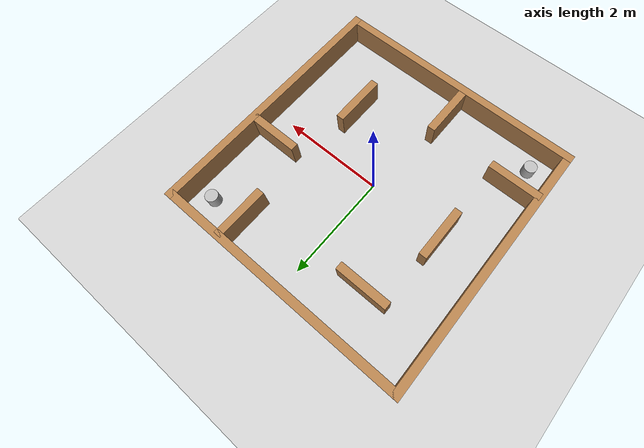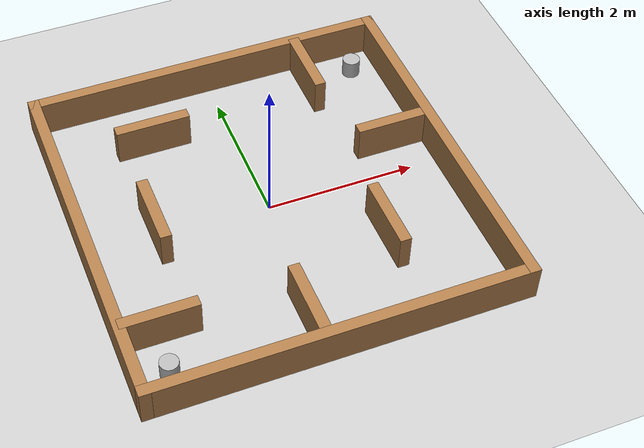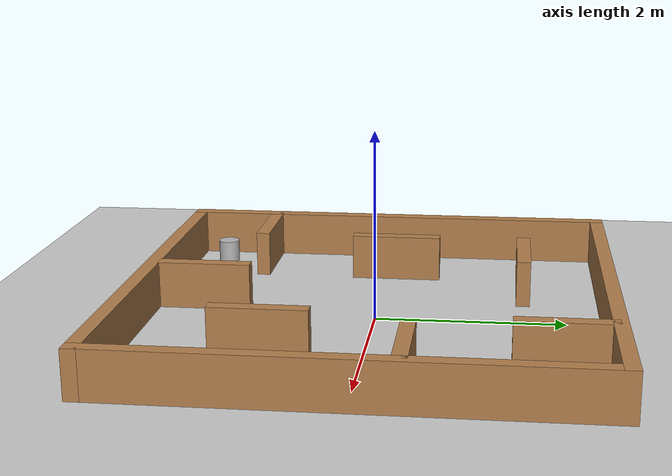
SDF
<sdf version="1.7">
 <world name="default">
  <light name="sun" type="directional">
   <pose>0 0 10 0 -0 0</pose>
   <diffuse>0.8 0.8 0.8 1</diffuse>
   <specular>0.2 0.2 0.2 1</specular>
   <attenuation>
    <range>1000</range>
    <constant>0.9</constant>
    <linear>0.01</linear>
    <quadratic>0.001</quadratic>
   </attenuation>
   <direction>-0.5 0.1 -0.9</direction>
   <spot><inner_angle>0</inner_angle><outer_angle>0</outer_angle><falloff>0</falloff></spot>
  </light>
  <model name="ground_plane">
   <static>1</static>
   <link name="link">
    <collision name="collision">
     <geometry><plane><normal>0 0 1</normal><size>100 100</size></plane></geometry>
     <surface>
      <contact><collide_bitmask>65535</collide_bitmask></contact>
      <friction><ode><mu>100</mu><mu2>50</mu2></ode></friction>
     </surface>
    </collision>
    <visual name="visual">
     <cast_shadows>0</cast_shadows>
     <geometry><plane><normal>0 0 1</normal><size>100 100</size></plane></geometry>
     <material>
      <script><uri>file://media/materials/scripts/gazebo.material</uri><name>Gazebo/Grey</name></script>
     </material>
    </visual>
   </link>
  </model>
  <physics type="ode">
   <real_time_update_rate>1000</real_time_update_rate>
   <max_step_size>0.001</max_step_size>
   <real_time_factor>1</real_time_factor>
   <ode>
    <solver>
     <type>quick</type>
     <iters>150</iters>
     <precon_iters>0</precon_iters>
     <sor>1.4</sor>
     <use_dynamic_moi_rescaling>1</use_dynamic_moi_rescaling>
    </solver>
    <constraints>
     <cfm>1e-05</cfm>
     <erp>0.2</erp>
     <contact_max_correcting_vel>2000</contact_max_correcting_vel>
     <contact_surface_layer>0.01</contact_surface_layer>
    </constraints>
   </ode>
  </physics>
  <model name="obstacle_1">
   <pose>2 2 0.124999 0 -0 0</pose>
   <link name="link">
    <collision name="collision">
     <geometry><cylinder><radius>0.12</radius><length>0.25</length></cylinder></geometry>
    </collision>
    <visual name="visual">
     <geometry><cylinder><radius>0.12</radius><length>0.25</length></cylinder></geometry>
    </visual>
    <inertial>
     <inertia><ixx>1</ixx><ixy>0</ixy><ixz>0</ixz><iyy>1</iyy><iyz>0</iyz><izz>1</izz></inertia>
     <mass>1</mass>
    </inertial>
   </link>
  </model>
  <model name="obstacle_2">
   <pose>-2 -2 0.124999 0 -0 0</pose>
   <link name="link">
    <collision name="collision">
     <geometry><cylinder><radius>0.12</radius><length>0.25</length></cylinder></geometry>
    </collision>
    <visual name="visual">
     <geometry><cylinder><radius>0.12</radius><length>0.25</length></cylinder></geometry>
    </visual>
    <inertial>
     <inertia><ixx>1</ixx><ixy>0</ixy><ixz>0</ixz><iyy>1</iyy><iyz>0</iyz><izz>1</izz></inertia>
     <mass>1</mass>
    </inertial>
   </link>
   <plugin name="obstacle_2" filename="libobstacle_2.so"/>
  </model>
  <scene><ambient>0.4 0.4 0.4 1</ambient><background>0.7 0.7 0.7 1</background><shadows>1</shadows></scene>
  <gravity>0 0 -9.8</gravity>
  <magnetic_field>6e-06 2.3e-05 -4.2e-05</magnetic_field>
  <atmosphere type="adiabatic"/>
  <audio><device>default</device></audio>
  <spherical_coordinates>
   <surface_model>EARTH_WGS84</surface_model>
   <latitude_deg>0</latitude_deg>
   <longitude_deg>0</longitude_deg>
   <elevation>0</elevation>
   <heading_deg>0</heading_deg>
  </spherical_coordinates>
  <model name="turtlebot3_plaza_mod">
   <link name="Wall_0">
    <pose>-2.425 0 0 0 -0 1.5708</pose>
    <visual name="Wall_0_Visual">
     <pose>0 0 0.25 0 -0 0</pose>
     <geometry><box><size>5 0.15 0.5</size></box></geometry>
     <material>
      <script><uri>file://media/materials/scripts/gazebo.material</uri><name>Gazebo/Wood</name></script>
      <ambient>1 1 1 1</ambient>
      <shader type="pixel"/>
     </material>
    </visual>
    <collision name="Wall_0_Collision">
     <pose>0 0 0.25 0 -0 0</pose>
     <geometry><box><size>5 0.15 0.5</size></box></geometry>
     <surface>
      <friction>
       <ode><mu>1</mu><mu2>1</mu2><fdir1>0 0 0</fdir1><slip1>0</slip1><slip2>0</slip2></ode>
       <torsional>
        <coefficient>1</coefficient>
        <patch_radius>0</patch_radius>
        <surface_radius>0</surface_radius>
        <use_patch_radius>1</use_patch_radius>
        <ode><slip>0</slip></ode>
       </torsional>
      </friction>
      <bounce><restitution_coefficient>0</restitution_coefficient><threshold>1e+06</threshold></bounce>
      <contact>
       <collide_without_contact>0</collide_without_contact>
       <collide_without_contact_bitmask>1</collide_without_contact_bitmask>
       <collide_bitmask>1</collide_bitmask>
       <ode>
        <soft_cfm>0</soft_cfm>
        <soft_erp>0.2</soft_erp>
        <kp>1e+13</kp>
        <kd>1</kd>
        <max_vel>0.01</max_vel>
        <min_depth>0</min_depth>
       </ode>
       <bullet>
        <split_impulse>1</split_impulse>
        <split_impulse_penetration_threshold>-0.01</split_impulse_penetration_threshold>
        <soft_cfm>0</soft_cfm>
        <soft_erp>0.2</soft_erp>
        <kp>1e+13</kp>
        <kd>1</kd>
       </bullet>
      </contact>
     </surface>
    </collision>
   </link>
   <link name="Wall_11">
    <pose>-1.937 -1.467 0 0 -0 0</pose>
    <visual name="Wall_11_Visual">
     <pose>0 0 0.25 0 -0 0</pose>
     <geometry><box><size>1 0.15 0.5</size></box></geometry>
     <material>
      <script><uri>file://media/materials/scripts/gazebo.material</uri><name>Gazebo/Wood</name></script>
      <ambient>1 1 1 1</ambient>
      <shader type="pixel"/>
     </material>
    </visual>
    <collision name="Wall_11_Collision">
     <pose>0 0 0.25 0 -0 0</pose>
     <geometry><box><size>1 0.15 0.5</size></box></geometry>
     <surface>
      <friction>
       <ode><mu>1</mu><mu2>1</mu2><fdir1>0 0 0</fdir1><slip1>0</slip1><slip2>0</slip2></ode>
       <torsional>
        <coefficient>1</coefficient>
        <patch_radius>0</patch_radius>
        <surface_radius>0</surface_radius>
        <use_patch_radius>1</use_patch_radius>
        <ode><slip>0</slip></ode>
       </torsional>
      </friction>
      <bounce><restitution_coefficient>0</restitution_coefficient><threshold>1e+06</threshold></bounce>
      <contact>
       <collide_without_contact>0</collide_without_contact>
       <collide_without_contact_bitmask>1</collide_without_contact_bitmask>
       <collide_bitmask>1</collide_bitmask>
       <ode>
        <soft_cfm>0</soft_cfm>
        <soft_erp>0.2</soft_erp>
        <kp>1e+13</kp>
        <kd>1</kd>
        <max_vel>0.01</max_vel>
        <min_depth>0</min_depth>
       </ode>
       <bullet>
        <split_impulse>1</split_impulse>
        <split_impulse_penetration_threshold>-0.01</split_impulse_penetration_threshold>
        <soft_cfm>0</soft_cfm>
        <soft_erp>0.2</soft_erp>
        <kp>1e+13</kp>
        <kd>1</kd>
       </bullet>
      </contact>
     </surface>
    </collision>
   </link>
   <link name="Wall_13">
    <pose>-0.22 -1.866 0 0 0 -1.5708</pose>
    <visual name="Wall_13_Visual">
     <pose>0 0 0.25 0 -0 0</pose>
     <geometry><box><size>1 0.15 0.5</size></box></geometry>
     <material>
      <script><uri>file://media/materials/scripts/gazebo.material</uri><name>Gazebo/Wood</name></script>
      <ambient>1 1 1 1</ambient>
      <shader type="pixel"/>
     </material>
    </visual>
    <collision name="Wall_13_Collision">
     <pose>0 0 0.25 0 -0 0</pose>
     <geometry><box><size>1 0.15 0.5</size></box></geometry>
     <surface>
      <friction>
       <ode><mu>1</mu><mu2>1</mu2><fdir1>0 0 0</fdir1><slip1>0</slip1><slip2>0</slip2></ode>
       <torsional>
        <coefficient>1</coefficient>
        <patch_radius>0</patch_radius>
        <surface_radius>0</surface_radius>
        <use_patch_radius>1</use_patch_radius>
        <ode><slip>0</slip></ode>
       </torsional>
      </friction>
      <bounce><restitution_coefficient>0</restitution_coefficient><threshold>1e+06</threshold></bounce>
      <contact>
       <collide_without_contact>0</collide_without_contact>
       <collide_without_contact_bitmask>1</collide_without_contact_bitmask>
       <collide_bitmask>1</collide_bitmask>
       <ode>
        <soft_cfm>0</soft_cfm>
        <soft_erp>0.2</soft_erp>
        <kp>1e+13</kp>
        <kd>1</kd>
        <max_vel>0.01</max_vel>
        <min_depth>0</min_depth>
       </ode>
       <bullet>
        <split_impulse>1</split_impulse>
        <split_impulse_penetration_threshold>-0.01</split_impulse_penetration_threshold>
        <soft_cfm>0</soft_cfm>
        <soft_erp>0.2</soft_erp>
        <kp>1e+13</kp>
        <kd>1</kd>
       </bullet>
      </contact>
     </surface>
    </collision>
   </link>
   <link name="Wall_15">
    <pose>1.195 -1.002 0 0 -0 1.5708</pose>
    <visual name="Wall_15_Visual">
     <pose>0 0 0.25 0 -0 0</pose>
     <geometry><box><size>1 0.15 0.5</size></box></geometry>
     <material>
      <script><uri>file://media/materials/scripts/gazebo.material</uri><name>Gazebo/Wood</name></script>
      <ambient>1 1 1 1</ambient>
      <shader type="pixel"/>
     </material>
    </visual>
    <collision name="Wall_15_Collision">
     <pose>0 0 0.25 0 -0 0</pose>
     <geometry><box><size>1 0.15 0.5</size></box></geometry>
     <surface>
      <friction>
       <ode><mu>1</mu><mu2>1</mu2><fdir1>0 0 0</fdir1><slip1>0</slip1><slip2>0</slip2></ode>
       <torsional>
        <coefficient>1</coefficient>
        <patch_radius>0</patch_radius>
        <surface_radius>0</surface_radius>
        <use_patch_radius>1</use_patch_radius>
        <ode><slip>0</slip></ode>
       </torsional>
      </friction>
      <bounce><restitution_coefficient>0</restitution_coefficient><threshold>1e+06</threshold></bounce>
      <contact>
       <collide_without_contact>0</collide_without_contact>
       <collide_without_contact_bitmask>1</collide_without_contact_bitmask>
       <collide_bitmask>1</collide_bitmask>
       <ode>
        <soft_cfm>0</soft_cfm>
        <soft_erp>0.2</soft_erp>
        <kp>1e+13</kp>
        <kd>1</kd>
        <max_vel>0.01</max_vel>
        <min_depth>0</min_depth>
       </ode>
       <bullet>
        <split_impulse>1</split_impulse>
        <split_impulse_penetration_threshold>-0.01</split_impulse_penetration_threshold>
        <soft_cfm>0</soft_cfm>
        <soft_erp>0.2</soft_erp>
        <kp>1e+13</kp>
        <kd>1</kd>
       </bullet>
      </contact>
     </surface>
    </collision>
   </link>
   <link name="Wall_17">
    <pose>1.288 1.93 0 0 0 -1.5708</pose>
    <visual name="Wall_17_Visual">
     <pose>0 0 0.25 0 -0 0</pose>
     <geometry><box><size>1 0.15 0.5</size></box></geometry>
     <material>
      <script><uri>file://media/materials/scripts/gazebo.material</uri><name>Gazebo/Wood</name></script>
      <ambient>1 1 1 1</ambient>
      <shader type="pixel"/>
     </material>
    </visual>
    <collision name="Wall_17_Collision">
     <pose>0 0 0.25 0 -0 0</pose>
     <geometry><box><size>1 0.15 0.5</size></box></geometry>
     <surface>
      <friction>
       <ode><mu>1</mu><mu2>1</mu2><fdir1>0 0 0</fdir1><slip1>0</slip1><slip2>0</slip2></ode>
       <torsional>
        <coefficient>1</coefficient>
        <patch_radius>0</patch_radius>
        <surface_radius>0</surface_radius>
        <use_patch_radius>1</use_patch_radius>
        <ode><slip>0</slip></ode>
       </torsional>
      </friction>
      <bounce><restitution_coefficient>0</restitution_coefficient><threshold>1e+06</threshold></bounce>
      <contact>
       <collide_without_contact>0</collide_without_contact>
       <collide_without_contact_bitmask>1</collide_without_contact_bitmask>
       <collide_bitmask>1</collide_bitmask>
       <ode>
        <soft_cfm>0</soft_cfm>
        <soft_erp>0.2</soft_erp>
        <kp>1e+13</kp>
        <kd>1</kd>
        <max_vel>0.01</max_vel>
        <min_depth>0</min_depth>
       </ode>
       <bullet>
        <split_impulse>1</split_impulse>
        <split_impulse_penetration_threshold>-0.01</split_impulse_penetration_threshold>
        <soft_cfm>0</soft_cfm>
        <soft_erp>0.2</soft_erp>
        <kp>1e+13</kp>
        <kd>1</kd>
       </bullet>
      </contact>
     </surface>
    </collision>
   </link>
   <link name="Wall_19">
    <pose>1.91128 0.4632 0 0 -0 0</pose>
    <visual name="Wall_19_Visual">
     <pose>0 0 0.25 0 -0 0</pose>
     <geometry><box><size>1 0.15 0.5</size></box></geometry>
     <material>
      <script><uri>file://media/materials/scripts/gazebo.material</uri><name>Gazebo/Wood</name></script>
      <ambient>1 1 1 1</ambient>
      <shader type="pixel"/>
     </material>
    </visual>
    <collision name="Wall_19_Collision">
     <pose>0 0 0.25 0 -0 0</pose>
     <geometry><box><size>1 0.15 0.5</size></box></geometry>
     <surface>
      <friction>
       <ode><mu>1</mu><mu2>1</mu2><fdir1>0 0 0</fdir1><slip1>0</slip1><slip2>0</slip2></ode>
       <torsional>
        <coefficient>1</coefficient>
        <patch_radius>0</patch_radius>
        <surface_radius>0</surface_radius>
        <use_patch_radius>1</use_patch_radius>
        <ode><slip>0</slip></ode>
       </torsional>
      </friction>
      <bounce><restitution_coefficient>0</restitution_coefficient><threshold>1e+06</threshold></bounce>
      <contact>
       <collide_without_contact>0</collide_without_contact>
       <collide_without_contact_bitmask>1</collide_without_contact_bitmask>
       <collide_bitmask>1</collide_bitmask>
       <ode>
        <soft_cfm>0</soft_cfm>
        <soft_erp>0.2</soft_erp>
        <kp>1e+13</kp>
        <kd>1</kd>
        <max_vel>0.01</max_vel>
        <min_depth>0</min_depth>
       </ode>
       <bullet>
        <split_impulse>1</split_impulse>
        <split_impulse_penetration_threshold>-0.01</split_impulse_penetration_threshold>
        <soft_cfm>0</soft_cfm>
        <soft_erp>0.2</soft_erp>
        <kp>1e+13</kp>
        <kd>1</kd>
       </bullet>
      </contact>
     </surface>
    </collision>
   </link>
   <link name="Wall_2">
    <pose>0 2.425 0 0 -0 0</pose>
    <visual name="Wall_2_Visual">
     <pose>0 0 0.25 0 -0 0</pose>
     <geometry><box><size>5 0.15 0.5</size></box></geometry>
     <material>
      <script><uri>file://media/materials/scripts/gazebo.material</uri><name>Gazebo/Wood</name></script>
      <ambient>1 1 1 1</ambient>
      <shader type="pixel"/>
     </material>
    </visual>
    <collision name="Wall_2_Collision">
     <pose>0 0 0.25 0 -0 0</pose>
     <geometry><box><size>5 0.15 0.5</size></box></geometry>
     <surface>
      <friction>
       <ode><mu>1</mu><mu2>1</mu2><fdir1>0 0 0</fdir1><slip1>0</slip1><slip2>0</slip2></ode>
       <torsional>
        <coefficient>1</coefficient>
        <patch_radius>0</patch_radius>
        <surface_radius>0</surface_radius>
        <use_patch_radius>1</use_patch_radius>
        <ode><slip>0</slip></ode>
       </torsional>
      </friction>
      <bounce><restitution_coefficient>0</restitution_coefficient><threshold>1e+06</threshold></bounce>
      <contact>
       <collide_without_contact>0</collide_without_contact>
       <collide_without_contact_bitmask>1</collide_without_contact_bitmask>
       <collide_bitmask>1</collide_bitmask>
       <ode>
        <soft_cfm>0</soft_cfm>
        <soft_erp>0.2</soft_erp>
        <kp>1e+13</kp>
        <kd>1</kd>
        <max_vel>0.01</max_vel>
        <min_depth>0</min_depth>
       </ode>
       <bullet>
        <split_impulse>1</split_impulse>
        <split_impulse_penetration_threshold>-0.01</split_impulse_penetration_threshold>
        <soft_cfm>0</soft_cfm>
        <soft_erp>0.2</soft_erp>
        <kp>1e+13</kp>
        <kd>1</kd>
       </bullet>
      </contact>
     </surface>
    </collision>
   </link>
   <link name="Wall_3">
    <pose>2.425 0 0 0 0 -1.5708</pose>
    <visual name="Wall_3_Visual">
     <pose>0 0 0.25 0 -0 0</pose>
     <geometry><box><size>5 0.15 0.5</size></box></geometry>
     <material>
      <script><uri>file://media/materials/scripts/gazebo.material</uri><name>Gazebo/Wood</name></script>
      <ambient>1 1 1 1</ambient>
      <shader type="pixel"/>
     </material>
    </visual>
    <collision name="Wall_3_Collision">
     <pose>0 0 0.25 0 -0 0</pose>
     <geometry><box><size>5 0.15 0.5</size></box></geometry>
     <surface>
      <friction>
       <ode><mu>1</mu><mu2>1</mu2><fdir1>0 0 0</fdir1><slip1>0</slip1><slip2>0</slip2></ode>
       <torsional>
        <coefficient>1</coefficient>
        <patch_radius>0</patch_radius>
        <surface_radius>0</surface_radius>
        <use_patch_radius>1</use_patch_radius>
        <ode><slip>0</slip></ode>
       </torsional>
      </friction>
      <bounce><restitution_coefficient>0</restitution_coefficient><threshold>1e+06</threshold></bounce>
      <contact>
       <collide_without_contact>0</collide_without_contact>
       <collide_without_contact_bitmask>1</collide_without_contact_bitmask>
       <collide_bitmask>1</collide_bitmask>
       <ode>
        <soft_cfm>0</soft_cfm>
        <soft_erp>0.2</soft_erp>
        <kp>1e+13</kp>
        <kd>1</kd>
        <max_vel>0.01</max_vel>
        <min_depth>0</min_depth>
       </ode>
       <bullet>
        <split_impulse>1</split_impulse>
        <split_impulse_penetration_threshold>-0.01</split_impulse_penetration_threshold>
        <soft_cfm>0</soft_cfm>
        <soft_erp>0.2</soft_erp>
        <kp>1e+13</kp>
        <kd>1</kd>
       </bullet>
      </contact>
     </surface>
    </collision>
   </link>
   <link name="Wall_4">
    <pose>0 -2.425 0 0 -0 3.14159</pose>
    <visual name="Wall_4_Visual">
     <pose>0 0 0.25 0 -0 0</pose>
     <geometry><box><size>5 0.15 0.5</size></box></geometry>
     <material>
      <script><uri>file://media/materials/scripts/gazebo.material</uri><name>Gazebo/Wood</name></script>
      <ambient>1 1 1 1</ambient>
      <shader type="pixel"/>
     </material>
    </visual>
    <collision name="Wall_4_Collision">
     <pose>0 0 0.25 0 -0 0</pose>
     <geometry><box><size>5 0.15 0.5</size></box></geometry>
     <surface>
      <friction>
       <ode><mu>1</mu><mu2>1</mu2><fdir1>0 0 0</fdir1><slip1>0</slip1><slip2>0</slip2></ode>
       <torsional>
        <coefficient>1</coefficient>
        <patch_radius>0</patch_radius>
        <surface_radius>0</surface_radius>
        <use_patch_radius>1</use_patch_radius>
        <ode><slip>0</slip></ode>
       </torsional>
      </friction>
      <bounce><restitution_coefficient>0</restitution_coefficient><threshold>1e+06</threshold></bounce>
      <contact>
       <collide_without_contact>0</collide_without_contact>
       <collide_without_contact_bitmask>1</collide_without_contact_bitmask>
       <collide_bitmask>1</collide_bitmask>
       <ode>
        <soft_cfm>0</soft_cfm>
        <soft_erp>0.2</soft_erp>
        <kp>1e+13</kp>
        <kd>1</kd>
        <max_vel>0.01</max_vel>
        <min_depth>0</min_depth>
       </ode>
       <bullet>
        <split_impulse>1</split_impulse>
        <split_impulse_penetration_threshold>-0.01</split_impulse_penetration_threshold>
        <soft_cfm>0</soft_cfm>
        <soft_erp>0.2</soft_erp>
        <kp>1e+13</kp>
        <kd>1</kd>
       </bullet>
      </contact>
     </surface>
    </collision>
   </link>
   <link name="Wall_7">
    <pose>-1.064 1.548 0 0 -0 0</pose>
    <visual name="Wall_7_Visual">
     <pose>0 0 0.25 0 -0 0</pose>
     <geometry><box><size>1 0.15 0.5</size></box></geometry>
     <material>
      <script><uri>file://media/materials/scripts/gazebo.material</uri><name>Gazebo/Wood</name></script>
      <ambient>1 1 1 1</ambient>
      <shader type="pixel"/>
     </material>
    </visual>
    <collision name="Wall_7_Collision">
     <pose>0 0 0.25 0 -0 0</pose>
     <geometry><box><size>1 0.15 0.5</size></box></geometry>
     <surface>
      <friction>
       <ode><mu>1</mu><mu2>1</mu2><fdir1>0 0 0</fdir1><slip1>0</slip1><slip2>0</slip2></ode>
       <torsional>
        <coefficient>1</coefficient>
        <patch_radius>0</patch_radius>
        <surface_radius>0</surface_radius>
        <use_patch_radius>1</use_patch_radius>
        <ode><slip>0</slip></ode>
       </torsional>
      </friction>
      <bounce><restitution_coefficient>0</restitution_coefficient><threshold>1e+06</threshold></bounce>
      <contact>
       <collide_without_contact>0</collide_without_contact>
       <collide_without_contact_bitmask>1</collide_without_contact_bitmask>
       <collide_bitmask>1</collide_bitmask>
       <ode>
        <soft_cfm>0</soft_cfm>
        <soft_erp>0.2</soft_erp>
        <kp>1e+13</kp>
        <kd>1</kd>
        <max_vel>0.01</max_vel>
        <min_depth>0</min_depth>
       </ode>
       <bullet>
        <split_impulse>1</split_impulse>
        <split_impulse_penetration_threshold>-0.01</split_impulse_penetration_threshold>
        <soft_cfm>0</soft_cfm>
        <soft_erp>0.2</soft_erp>
        <kp>1e+13</kp>
        <kd>1</kd>
       </bullet>
      </contact>
     </surface>
    </collision>
   </link>
   <link name="Wall_9">
    <pose>-1.502 0.092 0 0 0 -1.5708</pose>
    <visual name="Wall_9_Visual">
     <pose>0 0 0.25 0 -0 0</pose>
     <geometry><box><size>1 0.15 0.5</size></box></geometry>
     <material>
      <script><uri>file://media/materials/scripts/gazebo.material</uri><name>Gazebo/Wood</name></script>
      <ambient>1 1 1 1</ambient>
      <shader type="pixel"/>
     </material>
    </visual>
    <collision name="Wall_9_Collision">
     <pose>0 0 0.25 0 -0 0</pose>
     <geometry><box><size>1 0.15 0.5</size></box></geometry>
     <surface>
      <friction>
       <ode><mu>1</mu><mu2>1</mu2><fdir1>0 0 0</fdir1><slip1>0</slip1><slip2>0</slip2></ode>
       <torsional>
        <coefficient>1</coefficient>
        <patch_radius>0</patch_radius>
        <surface_radius>0</surface_radius>
        <use_patch_radius>1</use_patch_radius>
        <ode><slip>0</slip></ode>
       </torsional>
      </friction>
      <bounce><restitution_coefficient>0</restitution_coefficient><threshold>1e+06</threshold></bounce>
      <contact>
       <collide_without_contact>0</collide_without_contact>
       <collide_without_contact_bitmask>1</collide_without_contact_bitmask>
       <collide_bitmask>1</collide_bitmask>
       <ode>
        <soft_cfm>0</soft_cfm>
        <soft_erp>0.2</soft_erp>
        <kp>1e+13</kp>
        <kd>1</kd>
        <max_vel>0.01</max_vel>
        <min_depth>0</min_depth>
       </ode>
       <bullet>
        <split_impulse>1</split_impulse>
        <split_impulse_penetration_threshold>-0.01</split_impulse_penetration_threshold>
        <soft_cfm>0</soft_cfm>
        <soft_erp>0.2</soft_erp>
        <kp>1e+13</kp>
        <kd>1</kd>
       </bullet>
      </contact>
     </surface>
    </collision>
   </link>
   <static>1</static>
  </model>
 </world>
</sdf>
